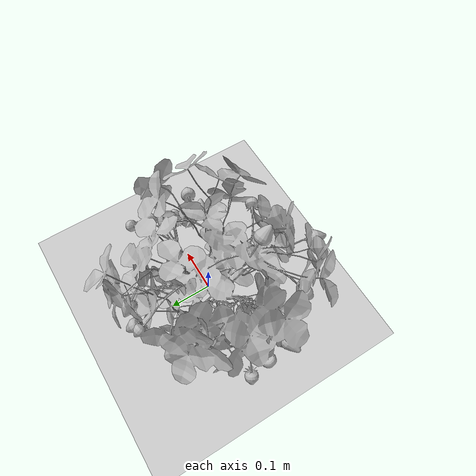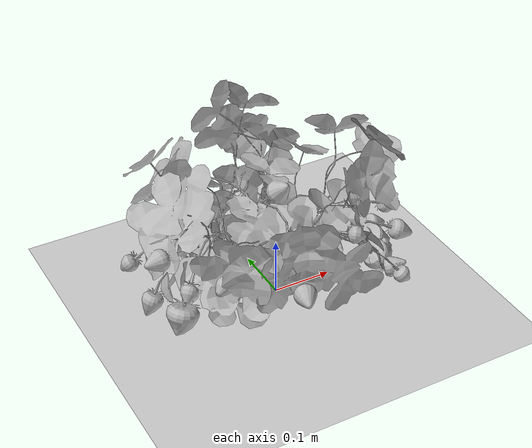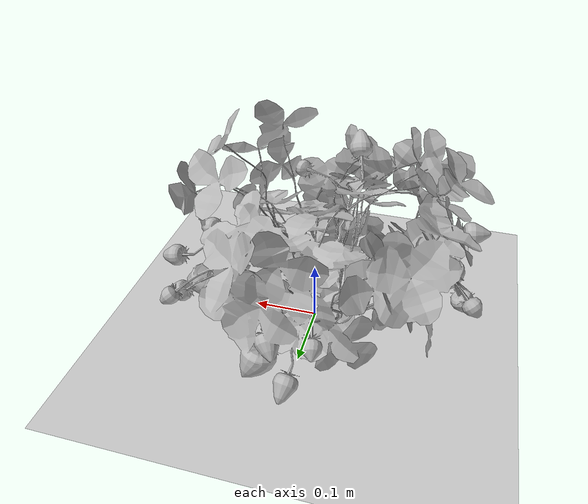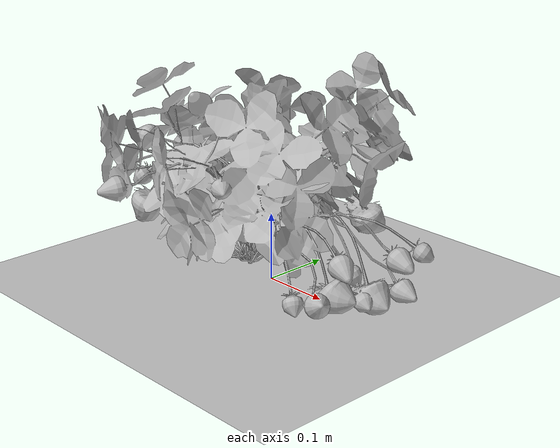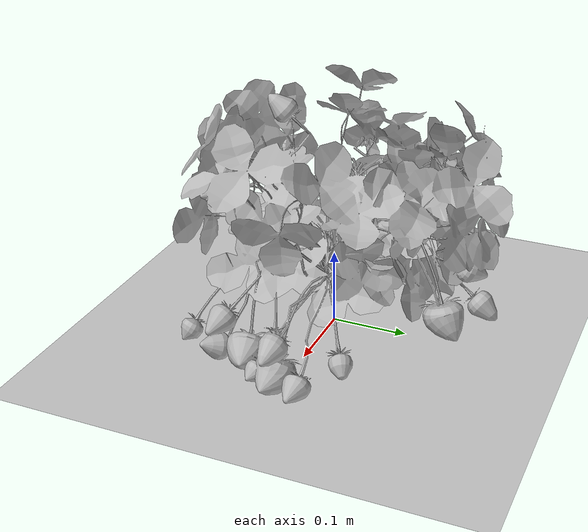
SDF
<?xml version="1.0"?>
<!-- Throwaway world to eyeball one textured strawberry plant in Gazebo Classic.
     Run:  gazebo ~/pomona_nexus/cad_agent/strawberry_plants/check_plant.world -->
<sdf version="1.6">
  <world name="check_plant">
    <include><uri>model://sun</uri></include>
    <include><uri>model://ground_plane</uri></include>

    <model name="strawberry_plant_01">
      <static>true</static>
      <!-- axis swap X->Y, Y->Z, Z->X  (Rz(90)*Rx(90)) -->
      <pose>0 0 0 1.5708 0 1.5708</pose>
      <link name="link">
        <visual name="visual">
          <geometry>
            <mesh>
              <uri>file:///home/pravin/pomona_nexus/cad_assets_studio/strawberry/meshes/strawberry_plant_01.obj</uri>
            </mesh>
          </geometry>
        </visual>
      </link>
    </model>

    <gui>
      <camera name="user_camera">
        <pose>0.8 -0.8 0.5 0 0.35 2.4</pose>
      </camera>
    </gui>
  </world>
</sdf>
